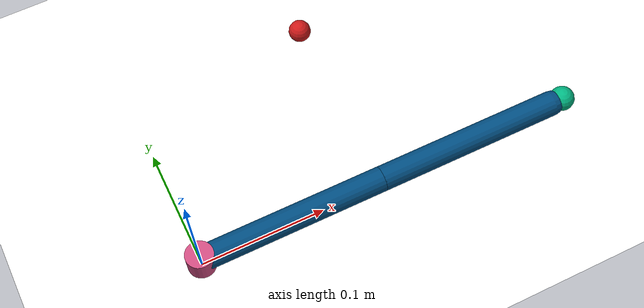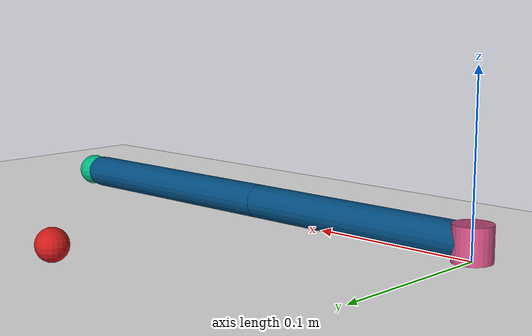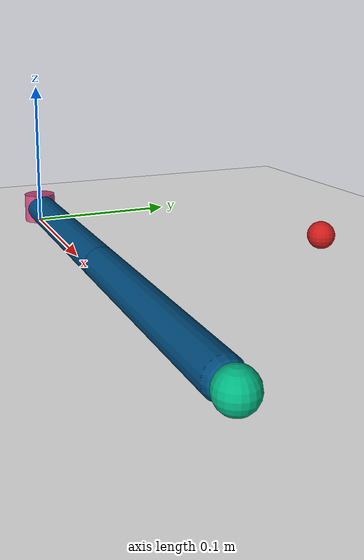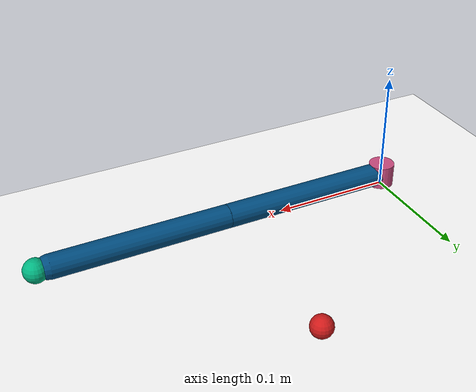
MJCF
<?xml version="1.0" ?>
<mujoco model="n_link_robot">
	<compiler angle="radian" inertiafromgeom="true"/>
	<asset>
		<texture type="skybox" builtin="gradient" rgb1="0.6 0.6 0.6" rgb2="0.3 0.3 0.3" width="512" height="512"/>
		<texture name="texplane" type="2d" builtin="checker" rgb1="0.0 0.0 0.0" rgb2="1.0 1.0 1.0" width="512" height="512"/>
		<material name="groundmat" texture="texplane" texrepeat="5 5"/>
	</asset>
	<visual>
		<map znear="0.001"/>
		<scale forcewidth="0.1"/>
	</visual>
	<default>
		<joint armature="1" damping="1" limited="true"/>
		<geom contype="0" friction="1 0.1 0.1" rgba="1 1 1 1"/>
	</default>
	<option gravity="0 -9.81 0" integrator="RK4" timestep="0.01"/>
	<worldbody>
		<camera name="track" mode="trackcom" pos="0 -0.3 0.3" xyaxes="1 0 0 0 1 1" target="body0"/>
		<geom conaffinity="0" contype="0" name="ground" pos="0 0 0" material="groundmat" size="1 1 10" type="plane"/>
		<light cutoff="100" diffuse="1 1 1" dir="-0 0 -1.3" directional="true" exponent="1" pos="0 0 1.3" specular=".1 .1 .1"/>
		<geom conaffinity="0" contype="0" fromto="0 0 0 0 0 0.02" name="root" rgba="0.8 0.3 0.5 1" size=".011" type="cylinder"/>
		<body name="body0" pos="0 0 .01">
			<joint axis="0 0 1" name="joint0" pos="0 0 0" type="hinge" limited="false"/>
			<geom fromto="0 0 0 0.15 0 0" name="link0" rgba="0.0 0.3 0.5 1" size="0.01" type="capsule" density="1000.0"/>
			<body name="body1" pos="0.15 0 0">
				<joint axis="0 0 1" name="joint1" pos="0 0 0" type="hinge" limited="true" range="-2.0 2.0"/>
				<geom fromto="0 0 0 0.15 0 0" name="link1" rgba="0.0 0.3 0.5 1" size="0.01" type="capsule" density="1000.0"/>
				<body name="fingertip" pos="0.16 0 0">
					<geom contype="0" name="fingertip" pos="0 0 0" rgba="0.0 0.7 0.5 1" size="0.01" type="sphere" density="1000.0"/>
				</body>
			</body>
		</body>
		<geom conaffinity="0" contype="0" name="target" pos="0.15 0.15 .01" rgba="0.8 0.1 0.1 1" size=".009" type="sphere"/>
	</worldbody>
	<actuator>
		<motor ctrllimited="true" ctrlrange="-1.0 1.0" gear="150.0" joint="joint0"/>
		<motor ctrllimited="true" ctrlrange="-1.0 1.0" gear="150.0" joint="joint1"/>
	</actuator>
</mujoco>
